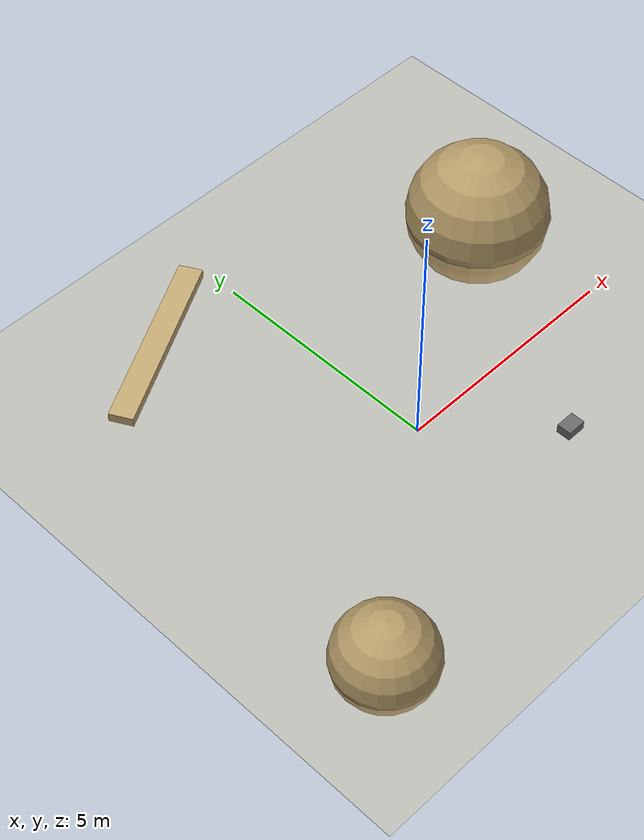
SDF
<sdf version='1.10'>
  <world name='simple_craters'>
    <physics name='1ms' type='ignored'>
      <max_step_size>0.05</max_step_size>
      <real_time_factor>1</real_time_factor>
      <real_time_update_rate>100</real_time_update_rate>
    </physics>

    <plugin name='gz::sim::systems::Physics' filename='gz-sim-physics-system'/>
    <plugin name='gz::sim::systems::UserCommands' filename='gz-sim-user-commands-system'/>
    <plugin name='gz::sim::systems::SceneBroadcaster' filename='gz-sim-scene-broadcaster-system'/>
    <plugin name='gz::sim::systems::Sensors' filename='gz-sim-sensors-system'>
      <render_engine>ogre2</render_engine>
    </plugin>
    <plugin name='gz::sim::systems::Contact' filename='gz-sim-contact-system'/>

    <gravity>0 0 -9.8</gravity>
    <magnetic_field>5.5e-06 2.3e-05 -4.2e-05</magnetic_field>
    <atmosphere type='adiabatic'/>

    <scene>
      <ambient>0.4 0.4 0.4 1</ambient>
      <background>0.7 0.7 0.7 1</background>
      <shadows>true</shadows>
    </scene>

    <!-- Main ground plane -->
    <model name='ground_plane'>
      <static>true</static>
      <link name='link'>
        <collision name='collision'>
          <geometry>
            <plane>
              <normal>0 0 1</normal>
              <size>50 50</size>
            </plane>
          </geometry>
          <surface>
            <friction>
              <ode/>
            </friction>
            <bounce/>
            <contact/>
          </surface>
        </collision>
        <visual name='visual'>
          <geometry>
            <plane>
              <normal>0 0 1</normal>
              <size>50 50</size>
            </plane>
          </geometry>
          <material>
            <diffuse>0.8 0.7 0.5 1.0</diffuse>
            <specular>0.1 0.1 0.1 1.0</specular>
          </material>
        </visual>
      </link>
    </model>

    <!-- Small mounds/hills for terrain variation -->
    <model name='mound_1'>
      <pose>5 3 0.15 0 0 0</pose>
      <static>true</static>
      <link name='link'>
        <collision name='collision'>
          <geometry>
            <sphere><radius>1.5</radius></sphere>
          </geometry>
        </collision>
        <visual name='visual'>
          <geometry>
            <sphere><radius>1.5</radius></sphere>
          </geometry>
          <material>
            <diffuse>0.7 0.6 0.4 1.0</diffuse>
          </material>
        </visual>
      </link>
    </model>

    <model name='mound_2'>
      <pose>-4 -3 0.1 0 0 0</pose>
      <static>true</static>
      <link name='link'>
        <collision name='collision'>
          <geometry>
            <sphere><radius>1.0</radius></sphere>
          </geometry>
        </collision>
        <visual name='visual'>
          <geometry>
            <sphere><radius>1.0</radius></sphere>
          </geometry>
          <material>
            <diffuse>0.7 0.6 0.4 1.0</diffuse>
          </material>
        </visual>
      </link>
    </model>

    <!-- Gentle ridge -->
    <model name='ridge_1'>
      <pose>-2 5 0.1 0 0 0.5</pose>
      <static>true</static>
      <link name='link'>
        <collision name='collision'>
          <geometry>
            <box><size>4 0.5 0.2</size></box>
          </geometry>
        </collision>
        <visual name='visual'>
          <geometry>
            <box><size>4 0.5 0.2</size></box>
          </geometry>
          <material>
            <diffuse>0.75 0.65 0.45 1.0</diffuse>
          </material>
        </visual>
      </link>
    </model>

    <!-- Scattered rocks -->
    <model name='rock_1'>
      <pose>2 -2 0.1 0 0 0</pose>
      <static>true</static>
      <link name='link'>
        <collision name='collision'>
          <geometry>
            <box><size>0.4 0.3 0.2</size></box>
          </geometry>
        </collision>
        <visual name='visual'>
          <geometry>
            <box><size>0.4 0.3 0.2</size></box>
          </geometry>
          <material>
            <diffuse>0.4 0.4 0.4 1.0</diffuse>
          </material>
        </visual>
      </link>
    </model>

    <!-- Sun lighting -->
    <light name='sun' type='directional'>
      <cast_shadows>true</cast_shadows>
      <pose>0 0 10 0 0 0</pose>
      <diffuse>0.8 0.8 0.8 1</diffuse>
      <specular>0.2 0.2 0.2 1</specular>
      <direction>-0.5 0.1 -0.9</direction>
    </light>

  </world>
</sdf>
